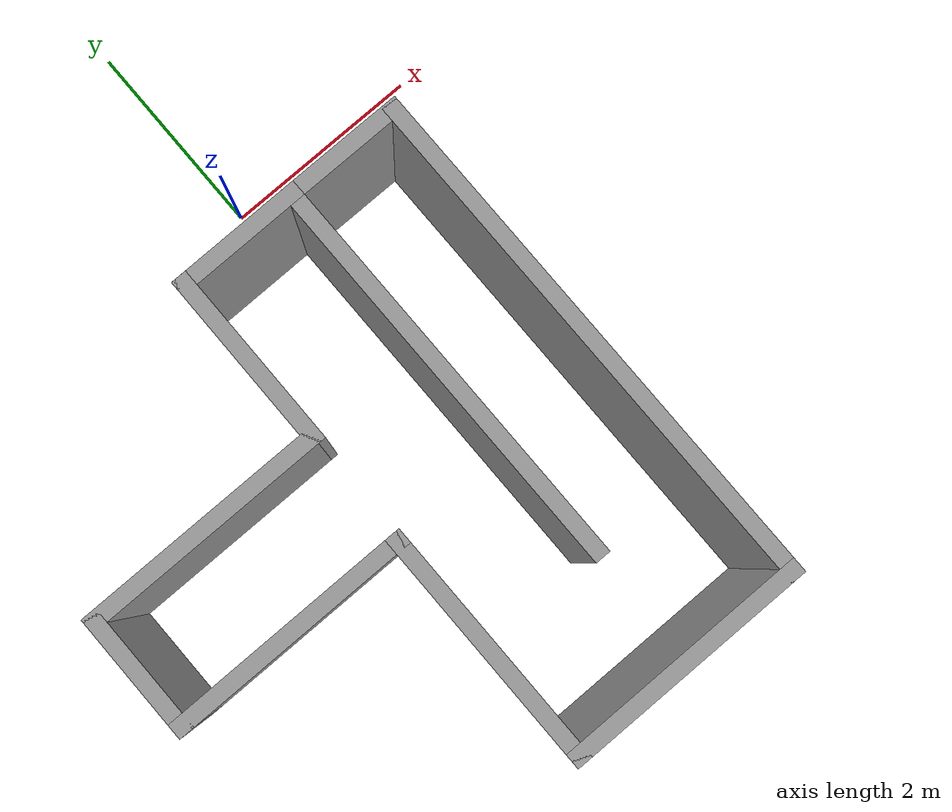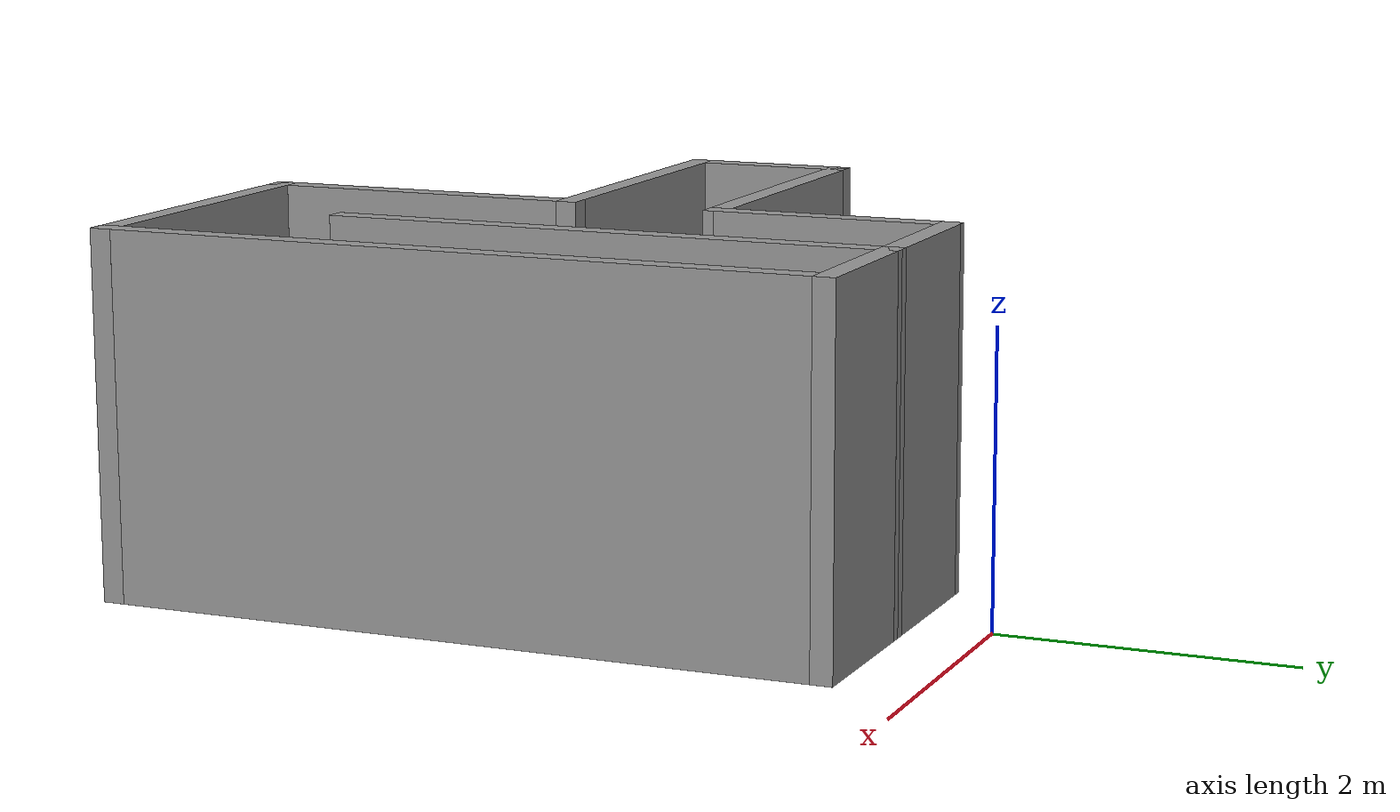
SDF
<?xml version='1.0'?>
<sdf version='1.6'>
  <model name='bug1_test'>
    <pose frame=''>-0.855881 -3.1015 0 0 -0 0</pose>
    <link name='Wall_0'>
      <collision name='Wall_0_Collision'>
        <geometry>
          <box>
            <size>1.30678 0.15 2.5</size>
          </box>
        </geometry>
        <pose frame=''>0 0 1.25 0 -0 0</pose>
      </collision>
      <visual name='Wall_0_Visual'>
        <pose frame=''>0 0 1.25 0 -0 0</pose>
        <geometry>
          <box>
            <size>1.30678 0.15 2.5</size>
          </box>
        </geometry>
        <material>
          <script>
            <uri>file://media/materials/scripts/gazebo.material</uri>
            <name>Gazebo/Grey</name>
          </script>
          <ambient>1 1 1 1</ambient>
        </material>
      </visual>
      <pose frame=''>0.60665 2.49755 0 0 -0 0.003514</pose>
    </link>
    <link name='Wall_1'>
      <collision name='Wall_1_Collision'>
        <geometry>
          <box>
            <size>4 0.15 2.5</size>
          </box>
        </geometry>
        <pose frame=''>0 0 1.25 0 -0 0</pose>
      </collision>
      <visual name='Wall_1_Visual'>
        <pose frame=''>0 0 1.25 0 -0 0</pose>
        <geometry>
          <box>
            <size>4 0.15 2.5</size>
          </box>
        </geometry>
        <material>
          <script>
            <uri>file://media/materials/scripts/gazebo.material</uri>
            <name>Gazebo/Grey</name>
          </script>
          <ambient>1 1 1 1</ambient>
        </material>
      </visual>
      <pose frame=''>1.18498 0.574585 0 0 0 -1.5708</pose>
    </link>
    <link name='Wall_10'>
      <collision name='Wall_10_Collision'>
        <geometry>
          <box>
            <size>1.79594 0.15 2.5</size>
          </box>
        </geometry>
        <pose frame=''>0 0 1.25 0 -0 0</pose>
      </collision>
      <visual name='Wall_10_Visual'>
        <pose frame=''>0 0 1.25 0 -0 0</pose>
        <geometry>
          <box>
            <size>1.79594 0.15 2.5</size>
          </box>
        </geometry>
        <material>
          <script>
            <uri>file://media/materials/scripts/gazebo.material</uri>
            <name>Gazebo/Grey</name>
          </script>
          <ambient>1 1 1 1</ambient>
        </material>
      </visual>
      <pose frame=''>0.025693 1.67255 0 0 -0 1.56761</pose>
    </link>
    <link name='Wall_3'>
      <collision name='Wall_3_Collision'>
        <geometry>
          <box>
            <size>1.25024 0.15 2.5</size>
          </box>
        </geometry>
        <pose frame=''>0 0 1.25 0 -0 0</pose>
      </collision>
      <visual name='Wall_3_Visual'>
        <pose frame=''>0 0 1.25 0 -0 0</pose>
        <geometry>
          <box>
            <size>1.25024 0.15 2.5</size>
          </box>
        </geometry>
        <material>
          <script>
            <uri>file://media/materials/scripts/gazebo.material</uri>
            <name>Gazebo/Grey</name>
          </script>
          <ambient>1 1 1 1</ambient>
        </material>
      </visual>
      <pose frame=''>1.73498 2.49959 0 0 -0 0</pose>
    </link>
    <link name='Wall_4'>
      <collision name='Wall_4_Collision'>
        <geometry>
          <box>
            <size>5.14943 0.15 2.5</size>
          </box>
        </geometry>
        <pose frame=''>0 0 1.25 0 -0 0</pose>
      </collision>
      <visual name='Wall_4_Visual'>
        <pose frame=''>0 0 1.25 0 -0 0</pose>
        <geometry>
          <box>
            <size>5.14943 0.15 2.5</size>
          </box>
        </geometry>
        <material>
          <script>
            <uri>file://media/materials/scripts/gazebo.material</uri>
            <name>Gazebo/Grey</name>
          </script>
          <ambient>1 1 1 1</ambient>
        </material>
      </visual>
      <pose frame=''>2.28498 -0.000131 0 0 0 -1.5708</pose>
    </link>
    <link name='Wall_5'>
      <collision name='Wall_5_Collision'>
        <geometry>
          <box>
            <size>2.43505 0.15 2.5</size>
          </box>
        </geometry>
        <pose frame=''>0 0 1.25 0 -0 0</pose>
      </collision>
      <visual name='Wall_5_Visual'>
        <pose frame=''>0 0 1.25 0 -0 0</pose>
        <geometry>
          <box>
            <size>2.43505 0.15 2.5</size>
          </box>
        </geometry>
        <material>
          <script>
            <uri>file://media/materials/scripts/gazebo.material</uri>
            <name>Gazebo/Grey</name>
          </script>
          <ambient>1 1 1 1</ambient>
        </material>
      </visual>
      <pose frame=''>1.14246 -2.49985 0 0 -0 3.14159</pose>
    </link>
    <link name='Wall_6'>
      <collision name='Wall_6_Collision'>
        <geometry>
          <box>
            <size>2.39943 0.15 2.5</size>
          </box>
        </geometry>
        <pose frame=''>0 0 1.25 0 -0 0</pose>
      </collision>
      <visual name='Wall_6_Visual'>
        <pose frame=''>0 0 1.25 0 -0 0</pose>
        <geometry>
          <box>
            <size>2.39943 0.15 2.5</size>
          </box>
        </geometry>
        <material>
          <script>
            <uri>file://media/materials/scripts/gazebo.material</uri>
            <name>Gazebo/Grey</name>
          </script>
          <ambient>1 1 1 1</ambient>
        </material>
      </visual>
      <pose frame=''>-6.1e-05 -1.37513 0 0 -0 1.5708</pose>
    </link>
    <link name='Wall_7'>
      <collision name='Wall_7_Collision'>
        <geometry>
          <box>
            <size>2.43505 0.15 2.5</size>
          </box>
        </geometry>
        <pose frame=''>0 0 1.25 0 -0 0</pose>
      </collision>
      <visual name='Wall_7_Visual'>
        <pose frame=''>0 0 1.25 0 -0 0</pose>
        <geometry>
          <box>
            <size>2.43505 0.15 2.5</size>
          </box>
        </geometry>
        <material>
          <script>
            <uri>file://media/materials/scripts/gazebo.material</uri>
            <name>Gazebo/Grey</name>
          </script>
          <ambient>1 1 1 1</ambient>
        </material>
      </visual>
      <pose frame=''>-1.14258 -0.250415 0 0 -0 3.14159</pose>
    </link>
    <link name='Wall_8'>
      <collision name='Wall_8_Collision'>
        <geometry>
          <box>
            <size>1.25 0.15 2.5</size>
          </box>
        </geometry>
        <pose frame=''>0 0 1.25 0 -0 0</pose>
      </collision>
      <visual name='Wall_8_Visual'>
        <pose frame=''>0 0 1.25 0 -0 0</pose>
        <geometry>
          <box>
            <size>1.25 0.15 2.5</size>
          </box>
        </geometry>
        <material>
          <script>
            <uri>file://media/materials/scripts/gazebo.material</uri>
            <name>Gazebo/Grey</name>
          </script>
          <ambient>1 1 1 1</ambient>
        </material>
      </visual>
      <pose frame=''>-2.28511 0.299585 0 0 -0 1.5708</pose>
    </link>
    <link name='Wall_9'>
      <collision name='Wall_9_Collision'>
        <geometry>
          <box>
            <size>2.45818 0.15 2.5</size>
          </box>
        </geometry>
        <pose frame=''>0 0 1.25 0 -0 0</pose>
      </collision>
      <visual name='Wall_9_Visual'>
        <pose frame=''>0 0 1.25 0 -0 0</pose>
        <geometry>
          <box>
            <size>2.45818 0.15 2.5</size>
          </box>
        </geometry>
        <material>
          <script>
            <uri>file://media/materials/scripts/gazebo.material</uri>
            <name>Gazebo/Grey</name>
          </script>
          <ambient>1 1 1 1</ambient>
        </material>
      </visual>
      <pose frame=''>-1.13102 0.849585 0 0 -0 0</pose>
    </link>
    <static>1</static>
  </model>
</sdf>
